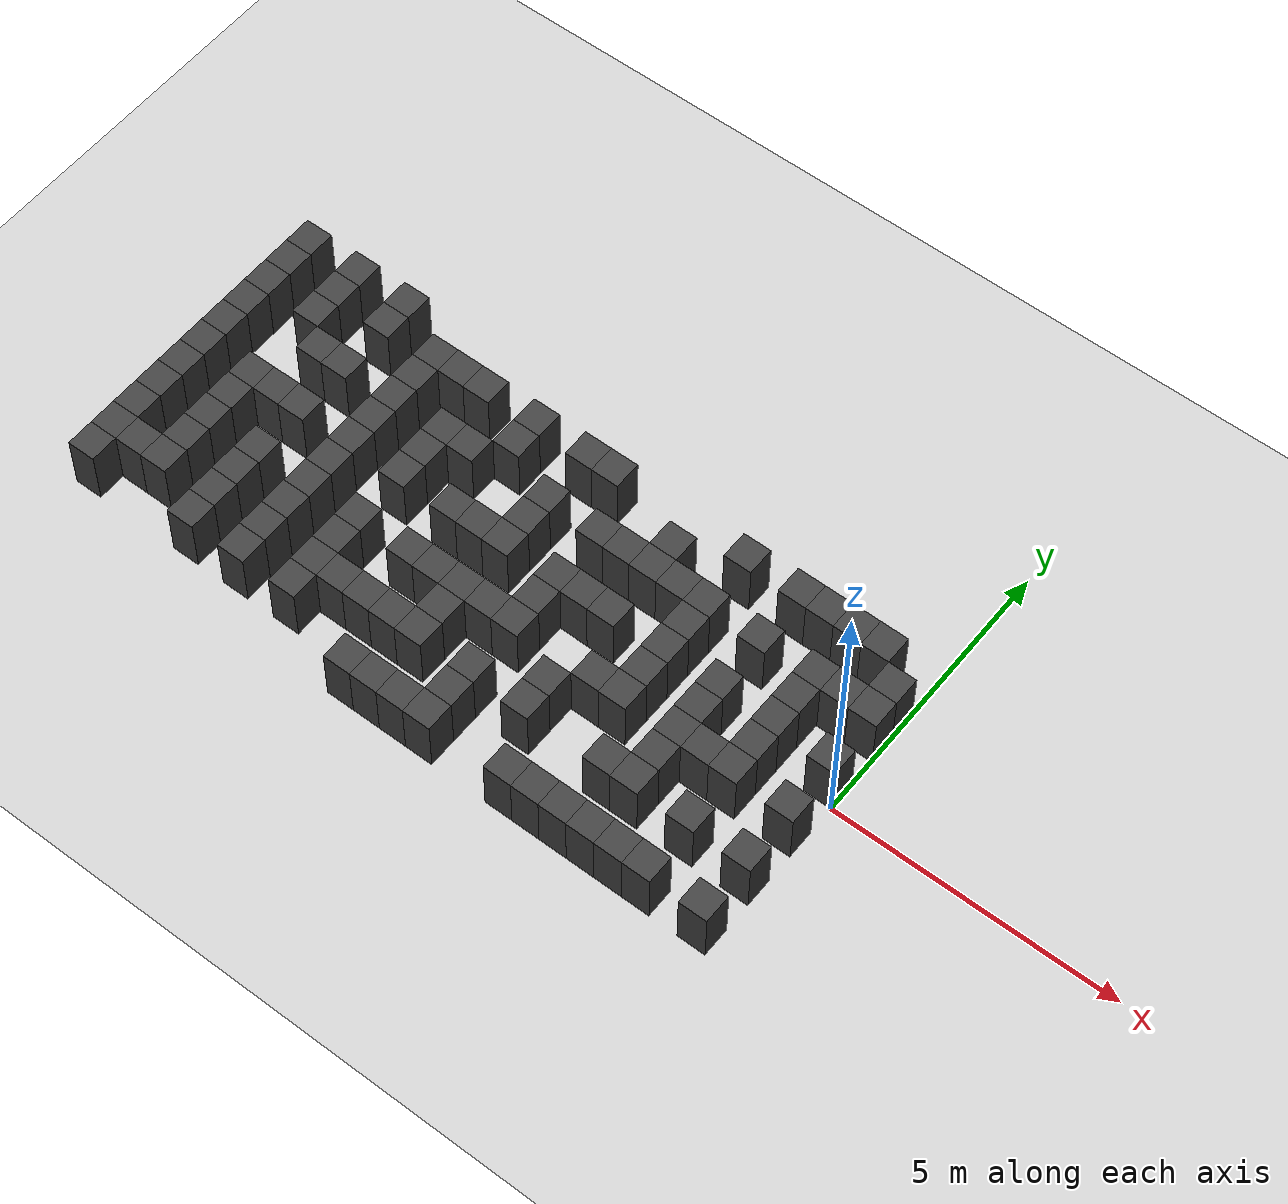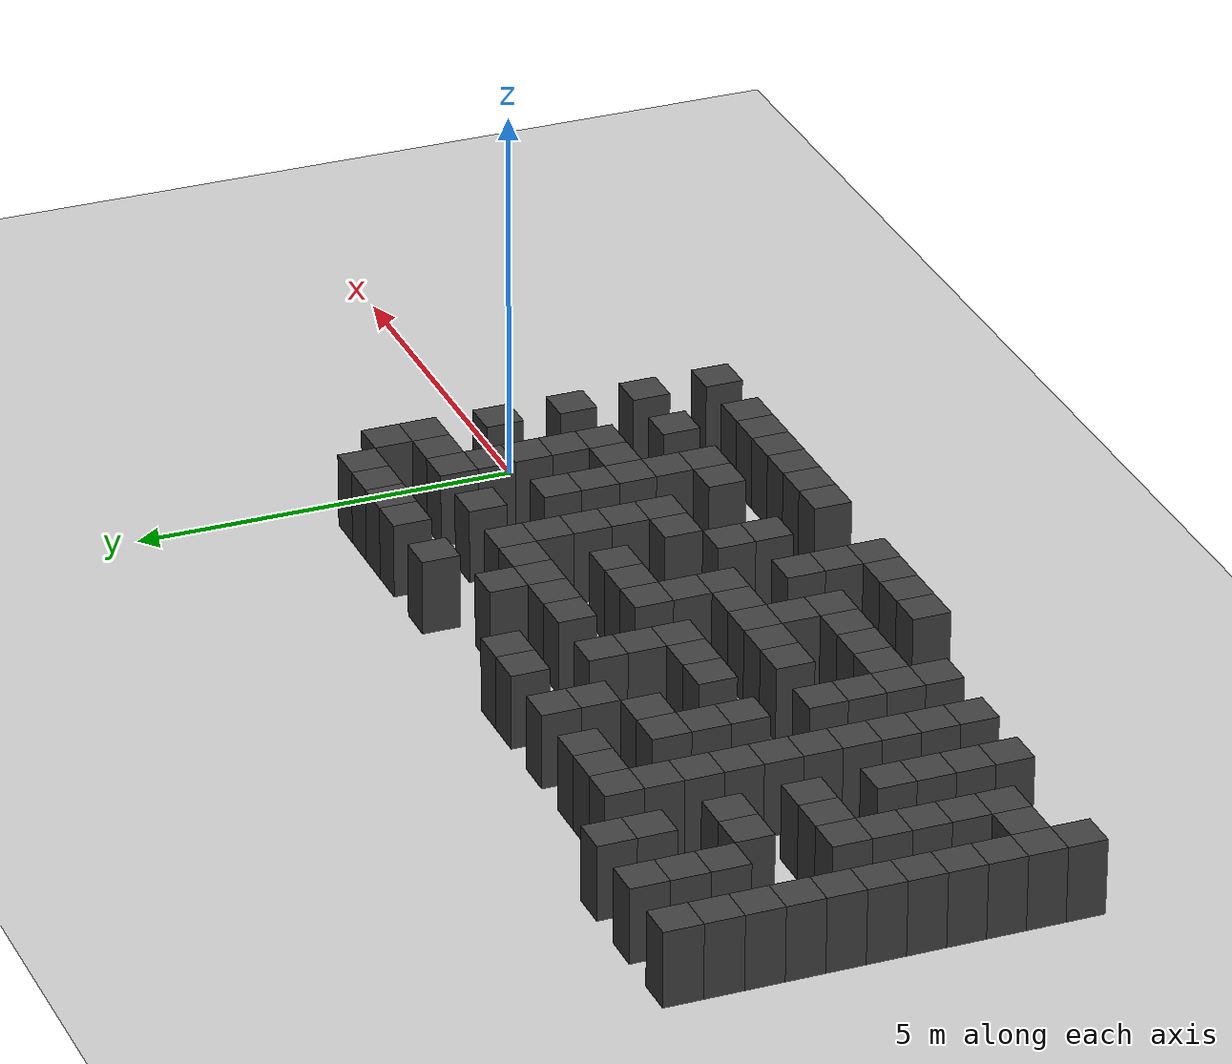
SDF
<sdf version="1.7">
 <world name="map_16271">
  <model name="ground_plane">
   <static>true</static>
   <link name="link">
    <collision name="collision">
     <geometry><plane><normal>0 0 1</normal><size>200 200</size></plane></geometry>
    </collision>
    <visual name="visual">
     <geometry><plane><normal>0 0 1</normal><size>200 200</size></plane></geometry>
     <material><ambient>0.8 0.8 0.8 1</ambient><diffuse>0.8 0.8 0.8 1</diffuse></material>
    </visual>
   </link>
  </model>
  <model name="maze_environment">
   <static>true</static>
   <link name="wall_473">
    <pose>-12.250 2.750 0.500 0 0 0</pose>
    <collision name="col"><geometry><box><size>0.5 0.5 1.0</size></box></geometry></collision>
    <visual name="vis">
     <geometry><box><size>0.5 0.5 1.0</size></box></geometry>
     <material><ambient>0.15 0.15 0.15 1</ambient><diffuse>0.25 0.25 0.25 1</diffuse></material>
    </visual>
   </link>
   <link name="wall_474">
    <pose>-11.250 2.750 0.500 0 0 0</pose>
    <collision name="col"><geometry><box><size>0.5 0.5 1.0</size></box></geometry></collision>
    <visual name="vis">
     <geometry><box><size>0.5 0.5 1.0</size></box></geometry>
     <material><ambient>0.15 0.15 0.15 1</ambient><diffuse>0.25 0.25 0.25 1</diffuse></material>
    </visual>
   </link>
   <link name="wall_475">
    <pose>-10.250 2.750 0.500 0 0 0</pose>
    <collision name="col"><geometry><box><size>0.5 0.5 1.0</size></box></geometry></collision>
    <visual name="vis">
     <geometry><box><size>0.5 0.5 1.0</size></box></geometry>
     <material><ambient>0.15 0.15 0.15 1</ambient><diffuse>0.25 0.25 0.25 1</diffuse></material>
    </visual>
   </link>
   <link name="wall_487">
    <pose>-12.250 2.250 0.500 0 0 0</pose>
    <collision name="col"><geometry><box><size>0.5 0.5 1.0</size></box></geometry></collision>
    <visual name="vis">
     <geometry><box><size>0.5 0.5 1.0</size></box></geometry>
     <material><ambient>0.15 0.15 0.15 1</ambient><diffuse>0.25 0.25 0.25 1</diffuse></material>
    </visual>
   </link>
   <link name="wall_488">
    <pose>-11.250 2.250 0.500 0 0 0</pose>
    <collision name="col"><geometry><box><size>0.5 0.5 1.0</size></box></geometry></collision>
    <visual name="vis">
     <geometry><box><size>0.5 0.5 1.0</size></box></geometry>
     <material><ambient>0.15 0.15 0.15 1</ambient><diffuse>0.25 0.25 0.25 1</diffuse></material>
    </visual>
   </link>
   <link name="wall_489">
    <pose>-10.250 2.250 0.500 0 0 0</pose>
    <collision name="col"><geometry><box><size>0.5 0.5 1.0</size></box></geometry></collision>
    <visual name="vis">
     <geometry><box><size>0.5 0.5 1.0</size></box></geometry>
     <material><ambient>0.15 0.15 0.15 1</ambient><diffuse>0.25 0.25 0.25 1</diffuse></material>
    </visual>
   </link>
   <link name="wall_490">
    <pose>-9.250 2.250 0.500 0 0 0</pose>
    <collision name="col"><geometry><box><size>0.5 0.5 1.0</size></box></geometry></collision>
    <visual name="vis">
     <geometry><box><size>0.5 0.5 1.0</size></box></geometry>
     <material><ambient>0.15 0.15 0.15 1</ambient><diffuse>0.25 0.25 0.25 1</diffuse></material>
    </visual>
   </link>
   <link name="wall_491">
    <pose>-8.750 2.250 0.500 0 0 0</pose>
    <collision name="col"><geometry><box><size>0.5 0.5 1.0</size></box></geometry></collision>
    <visual name="vis">
     <geometry><box><size>0.5 0.5 1.0</size></box></geometry>
     <material><ambient>0.15 0.15 0.15 1</ambient><diffuse>0.25 0.25 0.25 1</diffuse></material>
    </visual>
   </link>
   <link name="wall_492">
    <pose>-8.250 2.250 0.500 0 0 0</pose>
    <collision name="col"><geometry><box><size>0.5 0.5 1.0</size></box></geometry></collision>
    <visual name="vis">
     <geometry><box><size>0.5 0.5 1.0</size></box></geometry>
     <material><ambient>0.15 0.15 0.15 1</ambient><diffuse>0.25 0.25 0.25 1</diffuse></material>
    </visual>
   </link>
   <link name="wall_493">
    <pose>-7.250 2.250 0.500 0 0 0</pose>
    <collision name="col"><geometry><box><size>0.5 0.5 1.0</size></box></geometry></collision>
    <visual name="vis">
     <geometry><box><size>0.5 0.5 1.0</size></box></geometry>
     <material><ambient>0.15 0.15 0.15 1</ambient><diffuse>0.25 0.25 0.25 1</diffuse></material>
    </visual>
   </link>
   <link name="wall_494">
    <pose>-6.250 2.250 0.500 0 0 0</pose>
    <collision name="col"><geometry><box><size>0.5 0.5 1.0</size></box></geometry></collision>
    <visual name="vis">
     <geometry><box><size>0.5 0.5 1.0</size></box></geometry>
     <material><ambient>0.15 0.15 0.15 1</ambient><diffuse>0.25 0.25 0.25 1</diffuse></material>
    </visual>
   </link>
   <link name="wall_495">
    <pose>-5.750 2.250 0.500 0 0 0</pose>
    <collision name="col"><geometry><box><size>0.5 0.5 1.0</size></box></geometry></collision>
    <visual name="vis">
     <geometry><box><size>0.5 0.5 1.0</size></box></geometry>
     <material><ambient>0.15 0.15 0.15 1</ambient><diffuse>0.25 0.25 0.25 1</diffuse></material>
    </visual>
   </link>
   <link name="wall_496">
    <pose>-3.250 2.250 0.500 0 0 0</pose>
    <collision name="col"><geometry><box><size>0.5 0.5 1.0</size></box></geometry></collision>
    <visual name="vis">
     <geometry><box><size>0.5 0.5 1.0</size></box></geometry>
     <material><ambient>0.15 0.15 0.15 1</ambient><diffuse>0.25 0.25 0.25 1</diffuse></material>
    </visual>
   </link>
   <link name="wall_497">
    <pose>-2.250 2.250 0.500 0 0 0</pose>
    <collision name="col"><geometry><box><size>0.5 0.5 1.0</size></box></geometry></collision>
    <visual name="vis">
     <geometry><box><size>0.5 0.5 1.0</size></box></geometry>
     <material><ambient>0.15 0.15 0.15 1</ambient><diffuse>0.25 0.25 0.25 1</diffuse></material>
    </visual>
   </link>
   <link name="wall_498">
    <pose>-1.750 2.250 0.500 0 0 0</pose>
    <collision name="col"><geometry><box><size>0.5 0.5 1.0</size></box></geometry></collision>
    <visual name="vis">
     <geometry><box><size>0.5 0.5 1.0</size></box></geometry>
     <material><ambient>0.15 0.15 0.15 1</ambient><diffuse>0.25 0.25 0.25 1</diffuse></material>
    </visual>
   </link>
   <link name="wall_499">
    <pose>-1.250 2.250 0.500 0 0 0</pose>
    <collision name="col"><geometry><box><size>0.5 0.5 1.0</size></box></geometry></collision>
    <visual name="vis">
     <geometry><box><size>0.5 0.5 1.0</size></box></geometry>
     <material><ambient>0.15 0.15 0.15 1</ambient><diffuse>0.25 0.25 0.25 1</diffuse></material>
    </visual>
   </link>
   <link name="wall_500">
    <pose>-0.750 2.250 0.500 0 0 0</pose>
    <collision name="col"><geometry><box><size>0.5 0.5 1.0</size></box></geometry></collision>
    <visual name="vis">
     <geometry><box><size>0.5 0.5 1.0</size></box></geometry>
     <material><ambient>0.15 0.15 0.15 1</ambient><diffuse>0.25 0.25 0.25 1</diffuse></material>
    </visual>
   </link>
   <link name="wall_519">
    <pose>-12.250 1.750 0.500 0 0 0</pose>
    <collision name="col"><geometry><box><size>0.5 0.5 1.0</size></box></geometry></collision>
    <visual name="vis">
     <geometry><box><size>0.5 0.5 1.0</size></box></geometry>
     <material><ambient>0.15 0.15 0.15 1</ambient><diffuse>0.25 0.25 0.25 1</diffuse></material>
    </visual>
   </link>
   <link name="wall_520">
    <pose>-11.250 1.750 0.500 0 0 0</pose>
    <collision name="col"><geometry><box><size>0.5 0.5 1.0</size></box></geometry></collision>
    <visual name="vis">
     <geometry><box><size>0.5 0.5 1.0</size></box></geometry>
     <material><ambient>0.15 0.15 0.15 1</ambient><diffuse>0.25 0.25 0.25 1</diffuse></material>
    </visual>
   </link>
   <link name="wall_521">
    <pose>-9.250 1.750 0.500 0 0 0</pose>
    <collision name="col"><geometry><box><size>0.5 0.5 1.0</size></box></geometry></collision>
    <visual name="vis">
     <geometry><box><size>0.5 0.5 1.0</size></box></geometry>
     <material><ambient>0.15 0.15 0.15 1</ambient><diffuse>0.25 0.25 0.25 1</diffuse></material>
    </visual>
   </link>
   <link name="wall_522">
    <pose>-7.250 1.750 0.500 0 0 0</pose>
    <collision name="col"><geometry><box><size>0.5 0.5 1.0</size></box></geometry></collision>
    <visual name="vis">
     <geometry><box><size>0.5 0.5 1.0</size></box></geometry>
     <material><ambient>0.15 0.15 0.15 1</ambient><diffuse>0.25 0.25 0.25 1</diffuse></material>
    </visual>
   </link>
   <link name="wall_523">
    <pose>-4.250 1.750 0.500 0 0 0</pose>
    <collision name="col"><geometry><box><size>0.5 0.5 1.0</size></box></geometry></collision>
    <visual name="vis">
     <geometry><box><size>0.5 0.5 1.0</size></box></geometry>
     <material><ambient>0.15 0.15 0.15 1</ambient><diffuse>0.25 0.25 0.25 1</diffuse></material>
    </visual>
   </link>
   <link name="wall_524">
    <pose>-0.250 1.750 0.500 0 0 0</pose>
    <collision name="col"><geometry><box><size>0.5 0.5 1.0</size></box></geometry></collision>
    <visual name="vis">
     <geometry><box><size>0.5 0.5 1.0</size></box></geometry>
     <material><ambient>0.15 0.15 0.15 1</ambient><diffuse>0.25 0.25 0.25 1</diffuse></material>
    </visual>
   </link>
   <link name="wall_533">
    <pose>-12.250 1.250 0.500 0 0 0</pose>
    <collision name="col"><geometry><box><size>0.5 0.5 1.0</size></box></geometry></collision>
    <visual name="vis">
     <geometry><box><size>0.5 0.5 1.0</size></box></geometry>
     <material><ambient>0.15 0.15 0.15 1</ambient><diffuse>0.25 0.25 0.25 1</diffuse></material>
    </visual>
   </link>
   <link name="wall_534">
    <pose>-10.750 1.250 0.500 0 0 0</pose>
    <collision name="col"><geometry><box><size>0.5 0.5 1.0</size></box></geometry></collision>
    <visual name="vis">
     <geometry><box><size>0.5 0.5 1.0</size></box></geometry>
     <material><ambient>0.15 0.15 0.15 1</ambient><diffuse>0.25 0.25 0.25 1</diffuse></material>
    </visual>
   </link>
   <link name="wall_535">
    <pose>-10.250 1.250 0.500 0 0 0</pose>
    <collision name="col"><geometry><box><size>0.5 0.5 1.0</size></box></geometry></collision>
    <visual name="vis">
     <geometry><box><size>0.5 0.5 1.0</size></box></geometry>
     <material><ambient>0.15 0.15 0.15 1</ambient><diffuse>0.25 0.25 0.25 1</diffuse></material>
    </visual>
   </link>
   <link name="wall_536">
    <pose>-9.250 1.250 0.500 0 0 0</pose>
    <collision name="col"><geometry><box><size>0.5 0.5 1.0</size></box></geometry></collision>
    <visual name="vis">
     <geometry><box><size>0.5 0.5 1.0</size></box></geometry>
     <material><ambient>0.15 0.15 0.15 1</ambient><diffuse>0.25 0.25 0.25 1</diffuse></material>
    </visual>
   </link>
   <link name="wall_537">
    <pose>-8.250 1.250 0.500 0 0 0</pose>
    <collision name="col"><geometry><box><size>0.5 0.5 1.0</size></box></geometry></collision>
    <visual name="vis">
     <geometry><box><size>0.5 0.5 1.0</size></box></geometry>
     <material><ambient>0.15 0.15 0.15 1</ambient><diffuse>0.25 0.25 0.25 1</diffuse></material>
    </visual>
   </link>
   <link name="wall_538">
    <pose>-7.750 1.250 0.500 0 0 0</pose>
    <collision name="col"><geometry><box><size>0.5 0.5 1.0</size></box></geometry></collision>
    <visual name="vis">
     <geometry><box><size>0.5 0.5 1.0</size></box></geometry>
     <material><ambient>0.15 0.15 0.15 1</ambient><diffuse>0.25 0.25 0.25 1</diffuse></material>
    </visual>
   </link>
   <link name="wall_539">
    <pose>-6.250 1.250 0.500 0 0 0</pose>
    <collision name="col"><geometry><box><size>0.5 0.5 1.0</size></box></geometry></collision>
    <visual name="vis">
     <geometry><box><size>0.5 0.5 1.0</size></box></geometry>
     <material><ambient>0.15 0.15 0.15 1</ambient><diffuse>0.25 0.25 0.25 1</diffuse></material>
    </visual>
   </link>
   <link name="wall_540">
    <pose>-5.250 1.250 0.500 0 0 0</pose>
    <collision name="col"><geometry><box><size>0.5 0.5 1.0</size></box></geometry></collision>
    <visual name="vis">
     <geometry><box><size>0.5 0.5 1.0</size></box></geometry>
     <material><ambient>0.15 0.15 0.15 1</ambient><diffuse>0.25 0.25 0.25 1</diffuse></material>
    </visual>
   </link>
   <link name="wall_541">
    <pose>-4.750 1.250 0.500 0 0 0</pose>
    <collision name="col"><geometry><box><size>0.5 0.5 1.0</size></box></geometry></collision>
    <visual name="vis">
     <geometry><box><size>0.5 0.5 1.0</size></box></geometry>
     <material><ambient>0.15 0.15 0.15 1</ambient><diffuse>0.25 0.25 0.25 1</diffuse></material>
    </visual>
   </link>
   <link name="wall_542">
    <pose>-4.250 1.250 0.500 0 0 0</pose>
    <collision name="col"><geometry><box><size>0.5 0.5 1.0</size></box></geometry></collision>
    <visual name="vis">
     <geometry><box><size>0.5 0.5 1.0</size></box></geometry>
     <material><ambient>0.15 0.15 0.15 1</ambient><diffuse>0.25 0.25 0.25 1</diffuse></material>
    </visual>
   </link>
   <link name="wall_543">
    <pose>-3.750 1.250 0.500 0 0 0</pose>
    <collision name="col"><geometry><box><size>0.5 0.5 1.0</size></box></geometry></collision>
    <visual name="vis">
     <geometry><box><size>0.5 0.5 1.0</size></box></geometry>
     <material><ambient>0.15 0.15 0.15 1</ambient><diffuse>0.25 0.25 0.25 1</diffuse></material>
    </visual>
   </link>
   <link name="wall_544">
    <pose>-3.250 1.250 0.500 0 0 0</pose>
    <collision name="col"><geometry><box><size>0.5 0.5 1.0</size></box></geometry></collision>
    <visual name="vis">
     <geometry><box><size>0.5 0.5 1.0</size></box></geometry>
     <material><ambient>0.15 0.15 0.15 1</ambient><diffuse>0.25 0.25 0.25 1</diffuse></material>
    </visual>
   </link>
   <link name="wall_545">
    <pose>-2.250 1.250 0.500 0 0 0</pose>
    <collision name="col"><geometry><box><size>0.5 0.5 1.0</size></box></geometry></collision>
    <visual name="vis">
     <geometry><box><size>0.5 0.5 1.0</size></box></geometry>
     <material><ambient>0.15 0.15 0.15 1</ambient><diffuse>0.25 0.25 0.25 1</diffuse></material>
    </visual>
   </link>
   <link name="wall_546">
    <pose>-1.250 1.250 0.500 0 0 0</pose>
    <collision name="col"><geometry><box><size>0.5 0.5 1.0</size></box></geometry></collision>
    <visual name="vis">
     <geometry><box><size>0.5 0.5 1.0</size></box></geometry>
     <material><ambient>0.15 0.15 0.15 1</ambient><diffuse>0.25 0.25 0.25 1</diffuse></material>
    </visual>
   </link>
   <link name="wall_547">
    <pose>-0.750 1.250 0.500 0 0 0</pose>
    <collision name="col"><geometry><box><size>0.5 0.5 1.0</size></box></geometry></collision>
    <visual name="vis">
     <geometry><box><size>0.5 0.5 1.0</size></box></geometry>
     <material><ambient>0.15 0.15 0.15 1</ambient><diffuse>0.25 0.25 0.25 1</diffuse></material>
    </visual>
   </link>
   <link name="wall_548">
    <pose>-0.250 1.250 0.500 0 0 0</pose>
    <collision name="col"><geometry><box><size>0.5 0.5 1.0</size></box></geometry></collision>
    <visual name="vis">
     <geometry><box><size>0.5 0.5 1.0</size></box></geometry>
     <material><ambient>0.15 0.15 0.15 1</ambient><diffuse>0.25 0.25 0.25 1</diffuse></material>
    </visual>
   </link>
   <link name="wall_563">
    <pose>-12.250 0.750 0.500 0 0 0</pose>
    <collision name="col"><geometry><box><size>0.5 0.5 1.0</size></box></geometry></collision>
    <visual name="vis">
     <geometry><box><size>0.5 0.5 1.0</size></box></geometry>
     <material><ambient>0.15 0.15 0.15 1</ambient><diffuse>0.25 0.25 0.25 1</diffuse></material>
    </visual>
   </link>
   <link name="wall_564">
    <pose>-9.250 0.750 0.500 0 0 0</pose>
    <collision name="col"><geometry><box><size>0.5 0.5 1.0</size></box></geometry></collision>
    <visual name="vis">
     <geometry><box><size>0.5 0.5 1.0</size></box></geometry>
     <material><ambient>0.15 0.15 0.15 1</ambient><diffuse>0.25 0.25 0.25 1</diffuse></material>
    </visual>
   </link>
   <link name="wall_565">
    <pose>-8.250 0.750 0.500 0 0 0</pose>
    <collision name="col"><geometry><box><size>0.5 0.5 1.0</size></box></geometry></collision>
    <visual name="vis">
     <geometry><box><size>0.5 0.5 1.0</size></box></geometry>
     <material><ambient>0.15 0.15 0.15 1</ambient><diffuse>0.25 0.25 0.25 1</diffuse></material>
    </visual>
   </link>
   <link name="wall_566">
    <pose>-6.250 0.750 0.500 0 0 0</pose>
    <collision name="col"><geometry><box><size>0.5 0.5 1.0</size></box></geometry></collision>
    <visual name="vis">
     <geometry><box><size>0.5 0.5 1.0</size></box></geometry>
     <material><ambient>0.15 0.15 0.15 1</ambient><diffuse>0.25 0.25 0.25 1</diffuse></material>
    </visual>
   </link>
   <link name="wall_567">
    <pose>-3.250 0.750 0.500 0 0 0</pose>
    <collision name="col"><geometry><box><size>0.5 0.5 1.0</size></box></geometry></collision>
    <visual name="vis">
     <geometry><box><size>0.5 0.5 1.0</size></box></geometry>
     <material><ambient>0.15 0.15 0.15 1</ambient><diffuse>0.25 0.25 0.25 1</diffuse></material>
    </visual>
   </link>
   <link name="wall_568">
    <pose>-1.250 0.750 0.500 0 0 0</pose>
    <collision name="col"><geometry><box><size>0.5 0.5 1.0</size></box></geometry></collision>
    <visual name="vis">
     <geometry><box><size>0.5 0.5 1.0</size></box></geometry>
     <material><ambient>0.15 0.15 0.15 1</ambient><diffuse>0.25 0.25 0.25 1</diffuse></material>
    </visual>
   </link>
   <link name="wall_578">
    <pose>-12.250 0.250 0.500 0 0 0</pose>
    <collision name="col"><geometry><box><size>0.5 0.5 1.0</size></box></geometry></collision>
    <visual name="vis">
     <geometry><box><size>0.5 0.5 1.0</size></box></geometry>
     <material><ambient>0.15 0.15 0.15 1</ambient><diffuse>0.25 0.25 0.25 1</diffuse></material>
    </visual>
   </link>
   <link name="wall_579">
    <pose>-11.250 0.250 0.500 0 0 0</pose>
    <collision name="col"><geometry><box><size>0.5 0.5 1.0</size></box></geometry></collision>
    <visual name="vis">
     <geometry><box><size>0.5 0.5 1.0</size></box></geometry>
     <material><ambient>0.15 0.15 0.15 1</ambient><diffuse>0.25 0.25 0.25 1</diffuse></material>
    </visual>
   </link>
   <link name="wall_580">
    <pose>-10.750 0.250 0.500 0 0 0</pose>
    <collision name="col"><geometry><box><size>0.5 0.5 1.0</size></box></geometry></collision>
    <visual name="vis">
     <geometry><box><size>0.5 0.5 1.0</size></box></geometry>
     <material><ambient>0.15 0.15 0.15 1</ambient><diffuse>0.25 0.25 0.25 1</diffuse></material>
    </visual>
   </link>
   <link name="wall_581">
    <pose>-10.250 0.250 0.500 0 0 0</pose>
    <collision name="col"><geometry><box><size>0.5 0.5 1.0</size></box></geometry></collision>
    <visual name="vis">
     <geometry><box><size>0.5 0.5 1.0</size></box></geometry>
     <material><ambient>0.15 0.15 0.15 1</ambient><diffuse>0.25 0.25 0.25 1</diffuse></material>
    </visual>
   </link>
   <link name="wall_582">
    <pose>-9.250 0.250 0.500 0 0 0</pose>
    <collision name="col"><geometry><box><size>0.5 0.5 1.0</size></box></geometry></collision>
    <visual name="vis">
     <geometry><box><size>0.5 0.5 1.0</size></box></geometry>
     <material><ambient>0.15 0.15 0.15 1</ambient><diffuse>0.25 0.25 0.25 1</diffuse></material>
    </visual>
   </link>
   <link name="wall_583">
    <pose>-8.250 0.250 0.500 0 0 0</pose>
    <collision name="col"><geometry><box><size>0.5 0.5 1.0</size></box></geometry></collision>
    <visual name="vis">
     <geometry><box><size>0.5 0.5 1.0</size></box></geometry>
     <material><ambient>0.15 0.15 0.15 1</ambient><diffuse>0.25 0.25 0.25 1</diffuse></material>
    </visual>
   </link>
   <link name="wall_584">
    <pose>-7.250 0.250 0.500 0 0 0</pose>
    <collision name="col"><geometry><box><size>0.5 0.5 1.0</size></box></geometry></collision>
    <visual name="vis">
     <geometry><box><size>0.5 0.5 1.0</size></box></geometry>
     <material><ambient>0.15 0.15 0.15 1</ambient><diffuse>0.25 0.25 0.25 1</diffuse></material>
    </visual>
   </link>
   <link name="wall_585">
    <pose>-6.750 0.250 0.500 0 0 0</pose>
    <collision name="col"><geometry><box><size>0.5 0.5 1.0</size></box></geometry></collision>
    <visual name="vis">
     <geometry><box><size>0.5 0.5 1.0</size></box></geometry>
     <material><ambient>0.15 0.15 0.15 1</ambient><diffuse>0.25 0.25 0.25 1</diffuse></material>
    </visual>
   </link>
   <link name="wall_586">
    <pose>-6.250 0.250 0.500 0 0 0</pose>
    <collision name="col"><geometry><box><size>0.5 0.5 1.0</size></box></geometry></collision>
    <visual name="vis">
     <geometry><box><size>0.5 0.5 1.0</size></box></geometry>
     <material><ambient>0.15 0.15 0.15 1</ambient><diffuse>0.25 0.25 0.25 1</diffuse></material>
    </visual>
   </link>
   <link name="wall_587">
    <pose>-5.250 0.250 0.500 0 0 0</pose>
    <collision name="col"><geometry><box><size>0.5 0.5 1.0</size></box></geometry></collision>
    <visual name="vis">
     <geometry><box><size>0.5 0.5 1.0</size></box></geometry>
     <material><ambient>0.15 0.15 0.15 1</ambient><diffuse>0.25 0.25 0.25 1</diffuse></material>
    </visual>
   </link>
   <link name="wall_588">
    <pose>-4.750 0.250 0.500 0 0 0</pose>
    <collision name="col"><geometry><box><size>0.5 0.5 1.0</size></box></geometry></collision>
    <visual name="vis">
     <geometry><box><size>0.5 0.5 1.0</size></box></geometry>
     <material><ambient>0.15 0.15 0.15 1</ambient><diffuse>0.25 0.25 0.25 1</diffuse></material>
    </visual>
   </link>
   <link name="wall_589">
    <pose>-4.250 0.250 0.500 0 0 0</pose>
    <collision name="col"><geometry><box><size>0.5 0.5 1.0</size></box></geometry></collision>
    <visual name="vis">
     <geometry><box><size>0.5 0.5 1.0</size></box></geometry>
     <material><ambient>0.15 0.15 0.15 1</ambient><diffuse>0.25 0.25 0.25 1</diffuse></material>
    </visual>
   </link>
   <link name="wall_590">
    <pose>-3.250 0.250 0.500 0 0 0</pose>
    <collision name="col"><geometry><box><size>0.5 0.5 1.0</size></box></geometry></collision>
    <visual name="vis">
     <geometry><box><size>0.5 0.5 1.0</size></box></geometry>
     <material><ambient>0.15 0.15 0.15 1</ambient><diffuse>0.25 0.25 0.25 1</diffuse></material>
    </visual>
   </link>
   <link name="wall_591">
    <pose>-2.250 0.250 0.500 0 0 0</pose>
    <collision name="col"><geometry><box><size>0.5 0.5 1.0</size></box></geometry></collision>
    <visual name="vis">
     <geometry><box><size>0.5 0.5 1.0</size></box></geometry>
     <material><ambient>0.15 0.15 0.15 1</ambient><diffuse>0.25 0.25 0.25 1</diffuse></material>
    </visual>
   </link>
   <link name="wall_592">
    <pose>-1.250 0.250 0.500 0 0 0</pose>
    <collision name="col"><geometry><box><size>0.5 0.5 1.0</size></box></geometry></collision>
    <visual name="vis">
     <geometry><box><size>0.5 0.5 1.0</size></box></geometry>
     <material><ambient>0.15 0.15 0.15 1</ambient><diffuse>0.25 0.25 0.25 1</diffuse></material>
    </visual>
   </link>
   <link name="wall_593">
    <pose>-0.250 0.250 0.500 0 0 0</pose>
    <collision name="col"><geometry><box><size>0.5 0.5 1.0</size></box></geometry></collision>
    <visual name="vis">
     <geometry><box><size>0.5 0.5 1.0</size></box></geometry>
     <material><ambient>0.15 0.15 0.15 1</ambient><diffuse>0.25 0.25 0.25 1</diffuse></material>
    </visual>
   </link>
   <link name="wall_612">
    <pose>-12.250 -0.250 0.500 0 0 0</pose>
    <collision name="col"><geometry><box><size>0.5 0.5 1.0</size></box></geometry></collision>
    <visual name="vis">
     <geometry><box><size>0.5 0.5 1.0</size></box></geometry>
     <material><ambient>0.15 0.15 0.15 1</ambient><diffuse>0.25 0.25 0.25 1</diffuse></material>
    </visual>
   </link>
   <link name="wall_613">
    <pose>-11.250 -0.250 0.500 0 0 0</pose>
    <collision name="col"><geometry><box><size>0.5 0.5 1.0</size></box></geometry></collision>
    <visual name="vis">
     <geometry><box><size>0.5 0.5 1.0</size></box></geometry>
     <material><ambient>0.15 0.15 0.15 1</ambient><diffuse>0.25 0.25 0.25 1</diffuse></material>
    </visual>
   </link>
   <link name="wall_614">
    <pose>-9.250 -0.250 0.500 0 0 0</pose>
    <collision name="col"><geometry><box><size>0.5 0.5 1.0</size></box></geometry></collision>
    <visual name="vis">
     <geometry><box><size>0.5 0.5 1.0</size></box></geometry>
     <material><ambient>0.15 0.15 0.15 1</ambient><diffuse>0.25 0.25 0.25 1</diffuse></material>
    </visual>
   </link>
   <link name="wall_615">
    <pose>-5.250 -0.250 0.500 0 0 0</pose>
    <collision name="col"><geometry><box><size>0.5 0.5 1.0</size></box></geometry></collision>
    <visual name="vis">
     <geometry><box><size>0.5 0.5 1.0</size></box></geometry>
     <material><ambient>0.15 0.15 0.15 1</ambient><diffuse>0.25 0.25 0.25 1</diffuse></material>
    </visual>
   </link>
   <link name="wall_616">
    <pose>-3.250 -0.250 0.500 0 0 0</pose>
    <collision name="col"><geometry><box><size>0.5 0.5 1.0</size></box></geometry></collision>
    <visual name="vis">
     <geometry><box><size>0.5 0.5 1.0</size></box></geometry>
     <material><ambient>0.15 0.15 0.15 1</ambient><diffuse>0.25 0.25 0.25 1</diffuse></material>
    </visual>
   </link>
   <link name="wall_617">
    <pose>-2.250 -0.250 0.500 0 0 0</pose>
    <collision name="col"><geometry><box><size>0.5 0.5 1.0</size></box></geometry></collision>
    <visual name="vis">
     <geometry><box><size>0.5 0.5 1.0</size></box></geometry>
     <material><ambient>0.15 0.15 0.15 1</ambient><diffuse>0.25 0.25 0.25 1</diffuse></material>
    </visual>
   </link>
   <link name="wall_618">
    <pose>-1.250 -0.250 0.500 0 0 0</pose>
    <collision name="col"><geometry><box><size>0.5 0.5 1.0</size></box></geometry></collision>
    <visual name="vis">
     <geometry><box><size>0.5 0.5 1.0</size></box></geometry>
     <material><ambient>0.15 0.15 0.15 1</ambient><diffuse>0.25 0.25 0.25 1</diffuse></material>
    </visual>
   </link>
   <link name="wall_626">
    <pose>-12.250 -0.750 0.500 0 0 0</pose>
    <collision name="col"><geometry><box><size>0.5 0.5 1.0</size></box></geometry></collision>
    <visual name="vis">
     <geometry><box><size>0.5 0.5 1.0</size></box></geometry>
     <material><ambient>0.15 0.15 0.15 1</ambient><diffuse>0.25 0.25 0.25 1</diffuse></material>
    </visual>
   </link>
   <link name="wall_627">
    <pose>-11.250 -0.750 0.500 0 0 0</pose>
    <collision name="col"><geometry><box><size>0.5 0.5 1.0</size></box></geometry></collision>
    <visual name="vis">
     <geometry><box><size>0.5 0.5 1.0</size></box></geometry>
     <material><ambient>0.15 0.15 0.15 1</ambient><diffuse>0.25 0.25 0.25 1</diffuse></material>
    </visual>
   </link>
   <link name="wall_628">
    <pose>-10.250 -0.750 0.500 0 0 0</pose>
    <collision name="col"><geometry><box><size>0.5 0.5 1.0</size></box></geometry></collision>
    <visual name="vis">
     <geometry><box><size>0.5 0.5 1.0</size></box></geometry>
     <material><ambient>0.15 0.15 0.15 1</ambient><diffuse>0.25 0.25 0.25 1</diffuse></material>
    </visual>
   </link>
   <link name="wall_629">
    <pose>-9.250 -0.750 0.500 0 0 0</pose>
    <collision name="col"><geometry><box><size>0.5 0.5 1.0</size></box></geometry></collision>
    <visual name="vis">
     <geometry><box><size>0.5 0.5 1.0</size></box></geometry>
     <material><ambient>0.15 0.15 0.15 1</ambient><diffuse>0.25 0.25 0.25 1</diffuse></material>
    </visual>
   </link>
   <link name="wall_630">
    <pose>-8.250 -0.750 0.500 0 0 0</pose>
    <collision name="col"><geometry><box><size>0.5 0.5 1.0</size></box></geometry></collision>
    <visual name="vis">
     <geometry><box><size>0.5 0.5 1.0</size></box></geometry>
     <material><ambient>0.15 0.15 0.15 1</ambient><diffuse>0.25 0.25 0.25 1</diffuse></material>
    </visual>
   </link>
   <link name="wall_631">
    <pose>-7.250 -0.750 0.500 0 0 0</pose>
    <collision name="col"><geometry><box><size>0.5 0.5 1.0</size></box></geometry></collision>
    <visual name="vis">
     <geometry><box><size>0.5 0.5 1.0</size></box></geometry>
     <material><ambient>0.15 0.15 0.15 1</ambient><diffuse>0.25 0.25 0.25 1</diffuse></material>
    </visual>
   </link>
   <link name="wall_632">
    <pose>-6.750 -0.750 0.500 0 0 0</pose>
    <collision name="col"><geometry><box><size>0.5 0.5 1.0</size></box></geometry></collision>
    <visual name="vis">
     <geometry><box><size>0.5 0.5 1.0</size></box></geometry>
     <material><ambient>0.15 0.15 0.15 1</ambient><diffuse>0.25 0.25 0.25 1</diffuse></material>
    </visual>
   </link>
   <link name="wall_633">
    <pose>-6.250 -0.750 0.500 0 0 0</pose>
    <collision name="col"><geometry><box><size>0.5 0.5 1.0</size></box></geometry></collision>
    <visual name="vis">
     <geometry><box><size>0.5 0.5 1.0</size></box></geometry>
     <material><ambient>0.15 0.15 0.15 1</ambient><diffuse>0.25 0.25 0.25 1</diffuse></material>
    </visual>
   </link>
   <link name="wall_634">
    <pose>-5.750 -0.750 0.500 0 0 0</pose>
    <collision name="col"><geometry><box><size>0.5 0.5 1.0</size></box></geometry></collision>
    <visual name="vis">
     <geometry><box><size>0.5 0.5 1.0</size></box></geometry>
     <material><ambient>0.15 0.15 0.15 1</ambient><diffuse>0.25 0.25 0.25 1</diffuse></material>
    </visual>
   </link>
   <link name="wall_635">
    <pose>-5.250 -0.750 0.500 0 0 0</pose>
    <collision name="col"><geometry><box><size>0.5 0.5 1.0</size></box></geometry></collision>
    <visual name="vis">
     <geometry><box><size>0.5 0.5 1.0</size></box></geometry>
     <material><ambient>0.15 0.15 0.15 1</ambient><diffuse>0.25 0.25 0.25 1</diffuse></material>
    </visual>
   </link>
   <link name="wall_636">
    <pose>-3.750 -0.750 0.500 0 0 0</pose>
    <collision name="col"><geometry><box><size>0.5 0.5 1.0</size></box></geometry></collision>
    <visual name="vis">
     <geometry><box><size>0.5 0.5 1.0</size></box></geometry>
     <material><ambient>0.15 0.15 0.15 1</ambient><diffuse>0.25 0.25 0.25 1</diffuse></material>
    </visual>
   </link>
   <link name="wall_637">
    <pose>-3.250 -0.750 0.500 0 0 0</pose>
    <collision name="col"><geometry><box><size>0.5 0.5 1.0</size></box></geometry></collision>
    <visual name="vis">
     <geometry><box><size>0.5 0.5 1.0</size></box></geometry>
     <material><ambient>0.15 0.15 0.15 1</ambient><diffuse>0.25 0.25 0.25 1</diffuse></material>
    </visual>
   </link>
   <link name="wall_638">
    <pose>-2.250 -0.750 0.500 0 0 0</pose>
    <collision name="col"><geometry><box><size>0.5 0.5 1.0</size></box></geometry></collision>
    <visual name="vis">
     <geometry><box><size>0.5 0.5 1.0</size></box></geometry>
     <material><ambient>0.15 0.15 0.15 1</ambient><diffuse>0.25 0.25 0.25 1</diffuse></material>
    </visual>
   </link>
   <link name="wall_639">
    <pose>-1.750 -0.750 0.500 0 0 0</pose>
    <collision name="col"><geometry><box><size>0.5 0.5 1.0</size></box></geometry></collision>
    <visual name="vis">
     <geometry><box><size>0.5 0.5 1.0</size></box></geometry>
     <material><ambient>0.15 0.15 0.15 1</ambient><diffuse>0.25 0.25 0.25 1</diffuse></material>
    </visual>
   </link>
   <link name="wall_640">
    <pose>-1.250 -0.750 0.500 0 0 0</pose>
    <collision name="col"><geometry><box><size>0.5 0.5 1.0</size></box></geometry></collision>
    <visual name="vis">
     <geometry><box><size>0.5 0.5 1.0</size></box></geometry>
     <material><ambient>0.15 0.15 0.15 1</ambient><diffuse>0.25 0.25 0.25 1</diffuse></material>
    </visual>
   </link>
   <link name="wall_641">
    <pose>-0.250 -0.750 0.500 0 0 0</pose>
    <collision name="col"><geometry><box><size>0.5 0.5 1.0</size></box></geometry></collision>
    <visual name="vis">
     <geometry><box><size>0.5 0.5 1.0</size></box></geometry>
     <material><ambient>0.15 0.15 0.15 1</ambient><diffuse>0.25 0.25 0.25 1</diffuse></material>
    </visual>
   </link>
   <link name="wall_660">
    <pose>-12.250 -1.250 0.500 0 0 0</pose>
    <collision name="col"><geometry><box><size>0.5 0.5 1.0</size></box></geometry></collision>
    <visual name="vis">
     <geometry><box><size>0.5 0.5 1.0</size></box></geometry>
     <material><ambient>0.15 0.15 0.15 1</ambient><diffuse>0.25 0.25 0.25 1</diffuse></material>
    </visual>
   </link>
   <link name="wall_661">
    <pose>-11.250 -1.250 0.500 0 0 0</pose>
    <collision name="col"><geometry><box><size>0.5 0.5 1.0</size></box></geometry></collision>
    <visual name="vis">
     <geometry><box><size>0.5 0.5 1.0</size></box></geometry>
     <material><ambient>0.15 0.15 0.15 1</ambient><diffuse>0.25 0.25 0.25 1</diffuse></material>
    </visual>
   </link>
   <link name="wall_662">
    <pose>-10.250 -1.250 0.500 0 0 0</pose>
    <collision name="col"><geometry><box><size>0.5 0.5 1.0</size></box></geometry></collision>
    <visual name="vis">
     <geometry><box><size>0.5 0.5 1.0</size></box></geometry>
     <material><ambient>0.15 0.15 0.15 1</ambient><diffuse>0.25 0.25 0.25 1</diffuse></material>
    </visual>
   </link>
   <link name="wall_663">
    <pose>-9.250 -1.250 0.500 0 0 0</pose>
    <collision name="col"><geometry><box><size>0.5 0.5 1.0</size></box></geometry></collision>
    <visual name="vis">
     <geometry><box><size>0.5 0.5 1.0</size></box></geometry>
     <material><ambient>0.15 0.15 0.15 1</ambient><diffuse>0.25 0.25 0.25 1</diffuse></material>
    </visual>
   </link>
   <link name="wall_664">
    <pose>-8.250 -1.250 0.500 0 0 0</pose>
    <collision name="col"><geometry><box><size>0.5 0.5 1.0</size></box></geometry></collision>
    <visual name="vis">
     <geometry><box><size>0.5 0.5 1.0</size></box></geometry>
     <material><ambient>0.15 0.15 0.15 1</ambient><diffuse>0.25 0.25 0.25 1</diffuse></material>
    </visual>
   </link>
   <link name="wall_665">
    <pose>-6.250 -1.250 0.500 0 0 0</pose>
    <collision name="col"><geometry><box><size>0.5 0.5 1.0</size></box></geometry></collision>
    <visual name="vis">
     <geometry><box><size>0.5 0.5 1.0</size></box></geometry>
     <material><ambient>0.15 0.15 0.15 1</ambient><diffuse>0.25 0.25 0.25 1</diffuse></material>
    </visual>
   </link>
   <link name="wall_666">
    <pose>-4.250 -1.250 0.500 0 0 0</pose>
    <collision name="col"><geometry><box><size>0.5 0.5 1.0</size></box></geometry></collision>
    <visual name="vis">
     <geometry><box><size>0.5 0.5 1.0</size></box></geometry>
     <material><ambient>0.15 0.15 0.15 1</ambient><diffuse>0.25 0.25 0.25 1</diffuse></material>
    </visual>
   </link>
   <link name="wall_667">
    <pose>-2.250 -1.250 0.500 0 0 0</pose>
    <collision name="col"><geometry><box><size>0.5 0.5 1.0</size></box></geometry></collision>
    <visual name="vis">
     <geometry><box><size>0.5 0.5 1.0</size></box></geometry>
     <material><ambient>0.15 0.15 0.15 1</ambient><diffuse>0.25 0.25 0.25 1</diffuse></material>
    </visual>
   </link>
   <link name="wall_677">
    <pose>-12.250 -1.750 0.500 0 0 0</pose>
    <collision name="col"><geometry><box><size>0.5 0.5 1.0</size></box></geometry></collision>
    <visual name="vis">
     <geometry><box><size>0.5 0.5 1.0</size></box></geometry>
     <material><ambient>0.15 0.15 0.15 1</ambient><diffuse>0.25 0.25 0.25 1</diffuse></material>
    </visual>
   </link>
   <link name="wall_678">
    <pose>-11.750 -1.750 0.500 0 0 0</pose>
    <collision name="col"><geometry><box><size>0.5 0.5 1.0</size></box></geometry></collision>
    <visual name="vis">
     <geometry><box><size>0.5 0.5 1.0</size></box></geometry>
     <material><ambient>0.15 0.15 0.15 1</ambient><diffuse>0.25 0.25 0.25 1</diffuse></material>
    </visual>
   </link>
   <link name="wall_679">
    <pose>-11.250 -1.750 0.500 0 0 0</pose>
    <collision name="col"><geometry><box><size>0.5 0.5 1.0</size></box></geometry></collision>
    <visual name="vis">
     <geometry><box><size>0.5 0.5 1.0</size></box></geometry>
     <material><ambient>0.15 0.15 0.15 1</ambient><diffuse>0.25 0.25 0.25 1</diffuse></material>
    </visual>
   </link>
   <link name="wall_680">
    <pose>-10.250 -1.750 0.500 0 0 0</pose>
    <collision name="col"><geometry><box><size>0.5 0.5 1.0</size></box></geometry></collision>
    <visual name="vis">
     <geometry><box><size>0.5 0.5 1.0</size></box></geometry>
     <material><ambient>0.15 0.15 0.15 1</ambient><diffuse>0.25 0.25 0.25 1</diffuse></material>
    </visual>
   </link>
   <link name="wall_681">
    <pose>-9.250 -1.750 0.500 0 0 0</pose>
    <collision name="col"><geometry><box><size>0.5 0.5 1.0</size></box></geometry></collision>
    <visual name="vis">
     <geometry><box><size>0.5 0.5 1.0</size></box></geometry>
     <material><ambient>0.15 0.15 0.15 1</ambient><diffuse>0.25 0.25 0.25 1</diffuse></material>
    </visual>
   </link>
   <link name="wall_682">
    <pose>-8.250 -1.750 0.500 0 0 0</pose>
    <collision name="col"><geometry><box><size>0.5 0.5 1.0</size></box></geometry></collision>
    <visual name="vis">
     <geometry><box><size>0.5 0.5 1.0</size></box></geometry>
     <material><ambient>0.15 0.15 0.15 1</ambient><diffuse>0.25 0.25 0.25 1</diffuse></material>
    </visual>
   </link>
   <link name="wall_683">
    <pose>-7.750 -1.750 0.500 0 0 0</pose>
    <collision name="col"><geometry><box><size>0.5 0.5 1.0</size></box></geometry></collision>
    <visual name="vis">
     <geometry><box><size>0.5 0.5 1.0</size></box></geometry>
     <material><ambient>0.15 0.15 0.15 1</ambient><diffuse>0.25 0.25 0.25 1</diffuse></material>
    </visual>
   </link>
   <link name="wall_684">
    <pose>-7.250 -1.750 0.500 0 0 0</pose>
    <collision name="col"><geometry><box><size>0.5 0.5 1.0</size></box></geometry></collision>
    <visual name="vis">
     <geometry><box><size>0.5 0.5 1.0</size></box></geometry>
     <material><ambient>0.15 0.15 0.15 1</ambient><diffuse>0.25 0.25 0.25 1</diffuse></material>
    </visual>
   </link>
   <link name="wall_685">
    <pose>-6.750 -1.750 0.500 0 0 0</pose>
    <collision name="col"><geometry><box><size>0.5 0.5 1.0</size></box></geometry></collision>
    <visual name="vis">
     <geometry><box><size>0.5 0.5 1.0</size></box></geometry>
     <material><ambient>0.15 0.15 0.15 1</ambient><diffuse>0.25 0.25 0.25 1</diffuse></material>
    </visual>
   </link>
   <link name="wall_686">
    <pose>-6.250 -1.750 0.500 0 0 0</pose>
    <collision name="col"><geometry><box><size>0.5 0.5 1.0</size></box></geometry></collision>
    <visual name="vis">
     <geometry><box><size>0.5 0.5 1.0</size></box></geometry>
     <material><ambient>0.15 0.15 0.15 1</ambient><diffuse>0.25 0.25 0.25 1</diffuse></material>
    </visual>
   </link>
   <link name="wall_687">
    <pose>-5.250 -1.750 0.500 0 0 0</pose>
    <collision name="col"><geometry><box><size>0.5 0.5 1.0</size></box></geometry></collision>
    <visual name="vis">
     <geometry><box><size>0.5 0.5 1.0</size></box></geometry>
     <material><ambient>0.15 0.15 0.15 1</ambient><diffuse>0.25 0.25 0.25 1</diffuse></material>
    </visual>
   </link>
   <link name="wall_688">
    <pose>-4.250 -1.750 0.500 0 0 0</pose>
    <collision name="col"><geometry><box><size>0.5 0.5 1.0</size></box></geometry></collision>
    <visual name="vis">
     <geometry><box><size>0.5 0.5 1.0</size></box></geometry>
     <material><ambient>0.15 0.15 0.15 1</ambient><diffuse>0.25 0.25 0.25 1</diffuse></material>
    </visual>
   </link>
   <link name="wall_689">
    <pose>-2.750 -1.750 0.500 0 0 0</pose>
    <collision name="col"><geometry><box><size>0.5 0.5 1.0</size></box></geometry></collision>
    <visual name="vis">
     <geometry><box><size>0.5 0.5 1.0</size></box></geometry>
     <material><ambient>0.15 0.15 0.15 1</ambient><diffuse>0.25 0.25 0.25 1</diffuse></material>
    </visual>
   </link>
   <link name="wall_690">
    <pose>-2.250 -1.750 0.500 0 0 0</pose>
    <collision name="col"><geometry><box><size>0.5 0.5 1.0</size></box></geometry></collision>
    <visual name="vis">
     <geometry><box><size>0.5 0.5 1.0</size></box></geometry>
     <material><ambient>0.15 0.15 0.15 1</ambient><diffuse>0.25 0.25 0.25 1</diffuse></material>
    </visual>
   </link>
   <link name="wall_691">
    <pose>-1.250 -1.750 0.500 0 0 0</pose>
    <collision name="col"><geometry><box><size>0.5 0.5 1.0</size></box></geometry></collision>
    <visual name="vis">
     <geometry><box><size>0.5 0.5 1.0</size></box></geometry>
     <material><ambient>0.15 0.15 0.15 1</ambient><diffuse>0.25 0.25 0.25 1</diffuse></material>
    </visual>
   </link>
   <link name="wall_692">
    <pose>-0.250 -1.750 0.500 0 0 0</pose>
    <collision name="col"><geometry><box><size>0.5 0.5 1.0</size></box></geometry></collision>
    <visual name="vis">
     <geometry><box><size>0.5 0.5 1.0</size></box></geometry>
     <material><ambient>0.15 0.15 0.15 1</ambient><diffuse>0.25 0.25 0.25 1</diffuse></material>
    </visual>
   </link>
   <link name="wall_707">
    <pose>-12.250 -2.250 0.500 0 0 0</pose>
    <collision name="col"><geometry><box><size>0.5 0.5 1.0</size></box></geometry></collision>
    <visual name="vis">
     <geometry><box><size>0.5 0.5 1.0</size></box></geometry>
     <material><ambient>0.15 0.15 0.15 1</ambient><diffuse>0.25 0.25 0.25 1</diffuse></material>
    </visual>
   </link>
   <link name="wall_708">
    <pose>-10.250 -2.250 0.500 0 0 0</pose>
    <collision name="col"><geometry><box><size>0.5 0.5 1.0</size></box></geometry></collision>
    <visual name="vis">
     <geometry><box><size>0.5 0.5 1.0</size></box></geometry>
     <material><ambient>0.15 0.15 0.15 1</ambient><diffuse>0.25 0.25 0.25 1</diffuse></material>
    </visual>
   </link>
   <link name="wall_709">
    <pose>-9.250 -2.250 0.500 0 0 0</pose>
    <collision name="col"><geometry><box><size>0.5 0.5 1.0</size></box></geometry></collision>
    <visual name="vis">
     <geometry><box><size>0.5 0.5 1.0</size></box></geometry>
     <material><ambient>0.15 0.15 0.15 1</ambient><diffuse>0.25 0.25 0.25 1</diffuse></material>
    </visual>
   </link>
   <link name="wall_710">
    <pose>-8.250 -2.250 0.500 0 0 0</pose>
    <collision name="col"><geometry><box><size>0.5 0.5 1.0</size></box></geometry></collision>
    <visual name="vis">
     <geometry><box><size>0.5 0.5 1.0</size></box></geometry>
     <material><ambient>0.15 0.15 0.15 1</ambient><diffuse>0.25 0.25 0.25 1</diffuse></material>
    </visual>
   </link>
   <link name="wall_711">
    <pose>-5.250 -2.250 0.500 0 0 0</pose>
    <collision name="col"><geometry><box><size>0.5 0.5 1.0</size></box></geometry></collision>
    <visual name="vis">
     <geometry><box><size>0.5 0.5 1.0</size></box></geometry>
     <material><ambient>0.15 0.15 0.15 1</ambient><diffuse>0.25 0.25 0.25 1</diffuse></material>
    </visual>
   </link>
   <link name="wall_727">
    <pose>-6.750 -2.750 0.500 0 0 0</pose>
    <collision name="col"><geometry><box><size>0.5 0.5 1.0</size></box></geometry></collision>
    <visual name="vis">
     <geometry><box><size>0.5 0.5 1.0</size></box></geometry>
     <material><ambient>0.15 0.15 0.15 1</ambient><diffuse>0.25 0.25 0.25 1</diffuse></material>
    </visual>
   </link>
   <link name="wall_728">
    <pose>-6.250 -2.750 0.500 0 0 0</pose>
    <collision name="col"><geometry><box><size>0.5 0.5 1.0</size></box></geometry></collision>
    <visual name="vis">
     <geometry><box><size>0.5 0.5 1.0</size></box></geometry>
     <material><ambient>0.15 0.15 0.15 1</ambient><diffuse>0.25 0.25 0.25 1</diffuse></material>
    </visual>
   </link>
   <link name="wall_729">
    <pose>-5.750 -2.750 0.500 0 0 0</pose>
    <collision name="col"><geometry><box><size>0.5 0.5 1.0</size></box></geometry></collision>
    <visual name="vis">
     <geometry><box><size>0.5 0.5 1.0</size></box></geometry>
     <material><ambient>0.15 0.15 0.15 1</ambient><diffuse>0.25 0.25 0.25 1</diffuse></material>
    </visual>
   </link>
   <link name="wall_730">
    <pose>-5.250 -2.750 0.500 0 0 0</pose>
    <collision name="col"><geometry><box><size>0.5 0.5 1.0</size></box></geometry></collision>
    <visual name="vis">
     <geometry><box><size>0.5 0.5 1.0</size></box></geometry>
     <material><ambient>0.15 0.15 0.15 1</ambient><diffuse>0.25 0.25 0.25 1</diffuse></material>
    </visual>
   </link>
   <link name="wall_731">
    <pose>-3.750 -2.750 0.500 0 0 0</pose>
    <collision name="col"><geometry><box><size>0.5 0.5 1.0</size></box></geometry></collision>
    <visual name="vis">
     <geometry><box><size>0.5 0.5 1.0</size></box></geometry>
     <material><ambient>0.15 0.15 0.15 1</ambient><diffuse>0.25 0.25 0.25 1</diffuse></material>
    </visual>
   </link>
   <link name="wall_732">
    <pose>-3.250 -2.750 0.500 0 0 0</pose>
    <collision name="col"><geometry><box><size>0.5 0.5 1.0</size></box></geometry></collision>
    <visual name="vis">
     <geometry><box><size>0.5 0.5 1.0</size></box></geometry>
     <material><ambient>0.15 0.15 0.15 1</ambient><diffuse>0.25 0.25 0.25 1</diffuse></material>
    </visual>
   </link>
   <link name="wall_733">
    <pose>-2.750 -2.750 0.500 0 0 0</pose>
    <collision name="col"><geometry><box><size>0.5 0.5 1.0</size></box></geometry></collision>
    <visual name="vis">
     <geometry><box><size>0.5 0.5 1.0</size></box></geometry>
     <material><ambient>0.15 0.15 0.15 1</ambient><diffuse>0.25 0.25 0.25 1</diffuse></material>
    </visual>
   </link>
   <link name="wall_734">
    <pose>-2.250 -2.750 0.500 0 0 0</pose>
    <collision name="col"><geometry><box><size>0.5 0.5 1.0</size></box></geometry></collision>
    <visual name="vis">
     <geometry><box><size>0.5 0.5 1.0</size></box></geometry>
     <material><ambient>0.15 0.15 0.15 1</ambient><diffuse>0.25 0.25 0.25 1</diffuse></material>
    </visual>
   </link>
   <link name="wall_735">
    <pose>-1.750 -2.750 0.500 0 0 0</pose>
    <collision name="col"><geometry><box><size>0.5 0.5 1.0</size></box></geometry></collision>
    <visual name="vis">
     <geometry><box><size>0.5 0.5 1.0</size></box></geometry>
     <material><ambient>0.15 0.15 0.15 1</ambient><diffuse>0.25 0.25 0.25 1</diffuse></material>
    </visual>
   </link>
   <link name="wall_736">
    <pose>-1.250 -2.750 0.500 0 0 0</pose>
    <collision name="col"><geometry><box><size>0.5 0.5 1.0</size></box></geometry></collision>
    <visual name="vis">
     <geometry><box><size>0.5 0.5 1.0</size></box></geometry>
     <material><ambient>0.15 0.15 0.15 1</ambient><diffuse>0.25 0.25 0.25 1</diffuse></material>
    </visual>
   </link>
   <link name="wall_737">
    <pose>-0.250 -2.750 0.500 0 0 0</pose>
    <collision name="col"><geometry><box><size>0.5 0.5 1.0</size></box></geometry></collision>
    <visual name="vis">
     <geometry><box><size>0.5 0.5 1.0</size></box></geometry>
     <material><ambient>0.15 0.15 0.15 1</ambient><diffuse>0.25 0.25 0.25 1</diffuse></material>
    </visual>
   </link>
  </model>
 </world>
</sdf>
